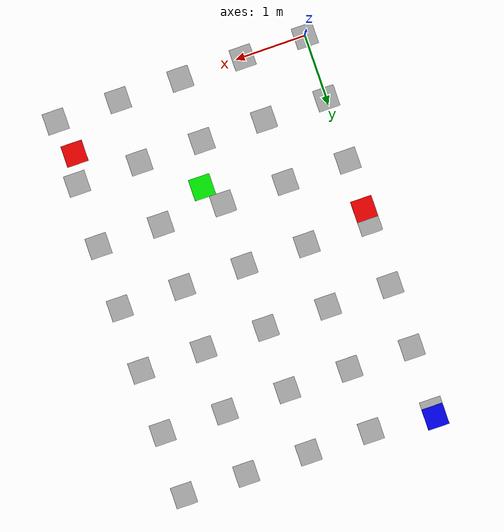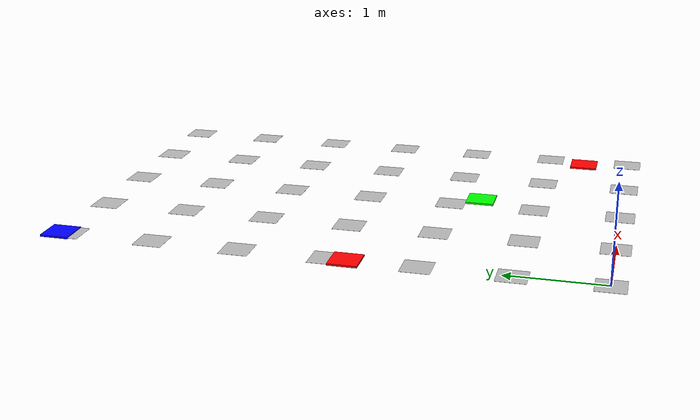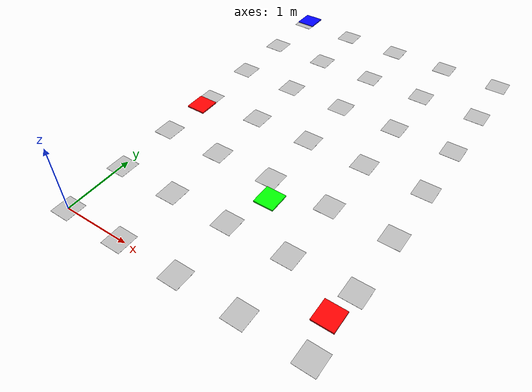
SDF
<sdf version="1.5">
 <world name="default">
  <include><uri>model://aruco_cmit_txt</uri></include>
  <include><uri>model://sun</uri></include>
  <include><name>red_0</name><uri>model://red</uri><pose>0 2.5 0 0 0 0</pose></include>
  <include><name>blue_0</name><uri>model://blue</uri><pose>0 5.5 0 0 0 0</pose></include>
  <include><name>red_1</name><uri>model://red</uri><pose>3.5 0.5 0 0 0 0</pose></include>
  <include><name>green_0</name><uri>model://green</uri><pose>2 1.5 0 0 0 0</pose></include>
  <scene>
   <ambient>0.8 0.8 0.8 1</ambient>
   <background>0.8 0.9 1 1</background>
   <shadows>false</shadows>
   <grid>false</grid>
   <origin_visual>false</origin_visual>
  </scene>
  <physics default="0" name="default_physics" type="ode">
   <gravity>0 0 -9.8066</gravity>
   <ode>
    <solver>
     <type>quick</type>
     <iters>10</iters>
     <sor>1.3</sor>
     <use_dynamic_moi_rescaling>0</use_dynamic_moi_rescaling>
    </solver>
    <constraints>
     <cfm>0</cfm>
     <erp>0.2</erp>
     <contact_max_correcting_vel>100</contact_max_correcting_vel>
     <contact_surface_layer>0.001</contact_surface_layer>
    </constraints>
   </ode>
   <max_step_size>0.004</max_step_size>
   <real_time_factor>1</real_time_factor>
   <real_time_update_rate>250</real_time_update_rate>
   <magnetic_field>6.0e-6 2.3e-5 -4.2e-5</magnetic_field>
  </physics>
 </world>
</sdf>

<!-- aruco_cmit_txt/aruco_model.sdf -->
<sdf version="1.5">
    <model name="aruco_2_99">
        <static>true</static>
        <link name="aruco_2_99_link">

<visual name="visual_marker_1">
    <pose>0.0 0.0 0.0 0.0 0.0 1.57079632679</pose>
    <cast_shadows>false</cast_shadows>
    <geometry>
        <box>
            <size>0.3 0.3 1e-3</size>
        </box>
    </geometry>
    <material>
        <script>
            <uri>model://aruco_cmit_txt/materials/scripts</uri>
            <uri>model://aruco_cmit_txt/materials/textures/</uri>
            <name>aruco/1</name>
        </script>
    </material>
</visual>

<visual name="visual_marker_2">
    <pose>0.9 0.0 0.0 0.0 0.0 1.57079632679</pose>
    <cast_shadows>false</cast_shadows>
    <geometry>
        <box>
            <size>0.3 0.3 1e-3</size>
        </box>
    </geometry>
    <material>
        <script>
            <uri>model://aruco_cmit_txt/materials/scripts</uri>
            <uri>model://aruco_cmit_txt/materials/textures</uri>
            <name>aruco/2</name>
        </script>
    </material>
</visual>

<visual name="visual_marker_3">
    <pose>1.8 0.0 0.0 0.0 0.0 1.57079632679</pose>
    <cast_shadows>false</cast_shadows>
    <geometry>
        <box>
            <size>0.3 0.3 1e-3</size>
        </box>
    </geometry>
    <material>
        <script>
            <uri>model://aruco_cmit_txt/materials/scripts</uri>
            <uri>model://aruco_cmit_txt/materials/textures</uri>
            <name>aruco/3</name>
        </script>
    </material>
</visual>

<visual name="visual_marker_4">
    <pose>2.7 0.0 0.0 0.0 0.0 1.57079632679</pose>
    <cast_shadows>false</cast_shadows>
    <geometry>
        <box>
            <size>0.3 0.3 1e-3</size>
        </box>
    </geometry>
    <material>
        <script>
            <uri>model://aruco_cmit_txt/materials/scripts</uri>
            <uri>model://aruco_cmit_txt/materials/textures</uri>
            <name>aruco/4</name>
        </script>
    </material>
</visual>

<visual name="visual_marker_5">
    <pose>3.6 0.0 0.0 0.0 0.0 1.57079632679</pose>
    <cast_shadows>false</cast_shadows>
    <geometry>
        <box>
            <size>0.3 0.3 1e-3</size>
        </box>
    </geometry>
    <material>
        <script>
            <uri>model://aruco_cmit_txt/materials/scripts</uri>
            <uri>model://aruco_cmit_txt/materials/textures</uri>
            <name>aruco/5</name>
        </script>
    </material>
</visual>

<visual name="visual_marker_6">
    <pose>0.0 0.9 0.0 0.0 0.0 1.57079632679</pose>
    <cast_shadows>false</cast_shadows>
    <geometry>
        <box>
            <size>0.3 0.3 1e-3</size>
        </box>
    </geometry>
    <material>
        <script>
            <uri>model://aruco_cmit_txt/materials/scripts</uri>
            <uri>model://aruco_cmit_txt/materials/textures</uri>
            <name>aruco/6</name>
        </script>
    </material>
</visual>

<visual name="visual_marker_7">
    <pose>0.9 0.9 0.0 0.0 0.0 1.57079632679</pose>
    <cast_shadows>false</cast_shadows>
    <geometry>
        <box>
            <size>0.3 0.3 1e-3</size>
        </box>
    </geometry>
    <material>
        <script>
            <uri>model://aruco_cmit_txt/materials/scripts</uri>
            <uri>model://aruco_cmit_txt/materials/textures</uri>
            <name>aruco/7</name>
        </script>
    </material>
</visual>

<visual name="visual_marker_8">
    <pose>1.8 0.9 0.0 0.0 0.0 1.57079632679</pose>
    <cast_shadows>false</cast_shadows>
    <geometry>
        <box>
            <size>0.3 0.3 1e-3</size>
        </box>
    </geometry>
    <material>
        <script>
            <uri>model://aruco_cmit_txt/materials/scripts</uri>
            <uri>model://aruco_cmit_txt/materials/textures</uri>
            <name>aruco/8</name>
        </script>
    </material>
</visual>

<visual name="visual_marker_9">
    <pose>2.7 0.9 0.0 0.0 0.0 1.57079632679</pose>
    <cast_shadows>false</cast_shadows>
    <geometry>
        <box>
            <size>0.3 0.3 1e-3</size>
        </box>
    </geometry>
    <material>
        <script>
            <uri>model://aruco_cmit_txt/materials/scripts</uri>
            <uri>model://aruco_cmit_txt/materials/textures</uri>
            <name>aruco/9</name>
        </script>
    </material>
</visual>

<visual name="visual_marker_10">
    <pose>3.6 0.9 0.0 0.0 0.0 1.57079632679</pose>
    <cast_shadows>false</cast_shadows>
    <geometry>
        <box>
            <size>0.3 0.3 1e-3</size>
        </box>
    </geometry>
    <material>
        <script>
            <uri>model://aruco_cmit_txt/materials/scripts</uri>
            <uri>model://aruco_cmit_txt/materials/textures</uri>
            <name>aruco/10</name>
        </script>
    </material>
</visual>

<visual name="visual_marker_11">
    <pose>0.0 1.8 0.0 0.0 0.0 1.57079632679</pose>
    <cast_shadows>false</cast_shadows>
    <geometry>
        <box>
            <size>0.3 0.3 1e-3</size>
        </box>
    </geometry>
    <material>
        <script>
            <uri>model://aruco_cmit_txt/materials/scripts</uri>
            <uri>model://aruco_cmit_txt/materials/textures</uri>
            <name>aruco/11</name>
        </script>
    </material>
</visual>

<visual name="visual_marker_12">
    <pose>0.9 1.8 0.0 0.0 0.0 1.57079632679</pose>
    <cast_shadows>false</cast_shadows>
    <geometry>
        <box>
            <size>0.3 0.3 1e-3</size>
        </box>
    </geometry>
    <material>
        <script>
            <uri>model://aruco_cmit_txt/materials/scripts</uri>
            <uri>model://aruco_cmit_txt/materials/textures</uri>
            <name>aruco/12</name>
        </script>
    </material>
</visual>

<visual name="visual_marker_13">
    <pose>1.8 1.8 0.0 0.0 0.0 1.57079632679</pose>
    <cast_shadows>false</cast_shadows>
    <geometry>
        <box>
            <size>0.3 0.3 1e-3</size>
        </box>
    </geometry>
    <material>
        <script>
            <uri>model://aruco_cmit_txt/materials/scripts</uri>
            <uri>model://aruco_cmit_txt/materials/textures</uri>
            <name>aruco/13</name>
        </script>
    </material>
</visual>

<visual name="visual_marker_14">
    <pose>2.7 1.8 0.0 0.0 0.0 1.57079632679</pose>
    <cast_shadows>false</cast_shadows>
    <geometry>
        <box>
            <size>0.3 0.3 1e-3</size>
        </box>
    </geometry>
    <material>
        <script>
            <uri>model://aruco_cmit_txt/materials/scripts</uri>
            <uri>model://aruco_cmit_txt/materials/textures</uri>
            <name>aruco/14</name>
        </script>
    </material>
</visual>

<visual name="visual_marker_15">
    <pose>3.6 1.8 0.0 0.0 0.0 1.57079632679</pose>
    <cast_shadows>false</cast_shadows>
    <geometry>
        <box>
            <size>0.3 0.3 1e-3</size>
        </box>
    </geometry>
    <material>
        <script>
            <uri>model://aruco_cmit_txt/materials/scripts</uri>
            <uri>model://aruco_cmit_txt/materials/textures</uri>
            <name>aruco/15</name>
        </script>
    </material>
</visual>

<visual name="visual_marker_16">
    <pose>0.0 2.7 0.0 0.0 0.0 1.57079632679</pose>
    <cast_shadows>false</cast_shadows>
    <geometry>
        <box>
            <size>0.3 0.3 1e-3</size>
        </box>
    </geometry>
    <material>
        <script>
            <uri>model://aruco_cmit_txt/materials/scripts</uri>
            <uri>model://aruco_cmit_txt/materials/textures</uri>
            <name>aruco/16</name>
        </script>
    </material>
</visual>

<visual name="visual_marker_17">
    <pose>0.9 2.7 0.0 0.0 0.0 1.57079632679</pose>
    <cast_shadows>false</cast_shadows>
    <geometry>
        <box>
            <size>0.3 0.3 1e-3</size>
        </box>
    </geometry>
    <material>
        <script>
            <uri>model://aruco_cmit_txt/materials/scripts</uri>
            <uri>model://aruco_cmit_txt/materials/textures</uri>
            <name>aruco/17</name>
        </script>
    </material>
</visual>

<visual name="visual_marker_18">
    <pose>1.8 2.7 0.0 0.0 0.0 1.57079632679</pose>
    <cast_shadows>false</cast_shadows>
    <geometry>
        <box>
            <size>0.3 0.3 1e-3</size>
        </box>
    </geometry>
    <material>
        <script>
            <uri>model://aruco_cmit_txt/materials/scripts</uri>
            <uri>model://aruco_cmit_txt/materials/textures</uri>
            <name>aruco/18</name>
        </script>
    </material>
</visual>

<visual name="visual_marker_19">
    <pose>2.7 2.7 0.0 0.0 0.0 1.57079632679</pose>
    <cast_shadows>false</cast_shadows>
    <geometry>
        <box>
            <size>0.3 0.3 1e-3</size>
        </box>
    </geometry>
    <material>
        <script>
            <uri>model://aruco_cmit_txt/materials/scripts</uri>
            <uri>model://aruco_cmit_txt/materials/textures</uri>
            <name>aruco/19</name>
        </script>
    </material>
</visual>

<visual name="visual_marker_20">
    <pose>3.6 2.7 0.0 0.0 0.0 1.57079632679</pose>
    <cast_shadows>false</cast_shadows>
    <geometry>
        <box>
            <size>0.3 0.3 1e-3</size>
        </box>
    </geometry>
    <material>
        <script>
            <uri>model://aruco_cmit_txt/materials/scripts</uri>
            <uri>model://aruco_cmit_txt/materials/textures</uri>
            <name>aruco/20</name>
        </script>
    </material>
</visual>

<visual name="visual_marker_21">
    <pose>0.0 3.6 0.0 0.0 0.0 1.57079632679</pose>
    <cast_shadows>false</cast_shadows>
    <geometry>
        <box>
            <size>0.3 0.3 1e-3</size>
        </box>
    </geometry>
    <material>
        <script>
            <uri>model://aruco_cmit_txt/materials/scripts</uri>
            <uri>model://aruco_cmit_txt/materials/textures/</uri>
            <name>aruco/21</name>
        </script>
    </material>
</visual>

<visual name="visual_marker_22">
    <pose>0.9 3.6 0.0 0.0 0.0 1.57079632679</pose>
    <cast_shadows>false</cast_shadows>
    <geometry>
        <box>
            <size>0.3 0.3 1e-3</size>
        </box>
    </geometry>
    <material>
        <script>
            <uri>model://aruco_cmit_txt/materials/scripts</uri>
            <uri>model://aruco_cmit_txt/materials/textures</uri>
            <name>aruco/22</name>
        </script>
    </material>
</visual>

<visual name="visual_marker_23">
    <pose>1.8 3.6 0.0 0.0 0.0 1.57079632679</pose>
    <cast_shadows>false</cast_shadows>
    <geometry>
        <box>
            <size>0.3 0.3 1e-3</size>
        </box>
    </geometry>
    <material>
        <script>
            <uri>model://aruco_cmit_txt/materials/scripts</uri>
            <uri>model://aruco_cmit_txt/materials/textures</uri>
            <name>aruco/23</name>
        </script>
    </material>
</visual>

<visual name="visual_marker_24">
    <pose>2.7 3.6 0.0 0.0 0.0 1.57079632679</pose>
    <cast_shadows>false</cast_shadows>
    <geometry>
        <box>
            <size>0.3 0.3 1e-3</size>
        </box>
    </geometry>
    <material>
        <script>
            <uri>model://aruco_cmit_txt/materials/scripts</uri>
            <uri>model://aruco_cmit_txt/materials/textures</uri>
            <name>aruco/24</name>
        </script>
    </material>
</visual>

<visual name="visual_marker_25">
    <pose>3.6 3.6 0.0 0.0 0.0 1.57079632679</pose>
    <cast_shadows>false</cast_shadows>
    <geometry>
        <box>
            <size>0.3 0.3 1e-3</size>
        </box>
    </geometry>
    <material>
        <script>
            <uri>model://aruco_cmit_txt/materials/scripts</uri>
            <uri>model://aruco_cmit_txt/materials/textures</uri>
            <name>aruco/25</name>
        </script>
    </material>
</visual>

<visual name="visual_marker_26">
    <pose>0.0 4.5 0.0 0.0 0.0 1.57079632679</pose>
    <cast_shadows>false</cast_shadows>
    <geometry>
        <box>
            <size>0.3 0.3 1e-3</size>
        </box>
    </geometry>
    <material>
        <script>
            <uri>model://aruco_cmit_txt/materials/scripts</uri>
            <uri>model://aruco_cmit_txt/materials/textures/</uri>
            <name>aruco/26</name>
        </script>
    </material>
</visual>

<visual name="visual_marker_27">
    <pose>0.9 4.5 0.0 0.0 0.0 1.57079632679</pose>
    <cast_shadows>false</cast_shadows>
    <geometry>
        <box>
            <size>0.3 0.3 1e-3</size>
        </box>
    </geometry>
    <material>
        <script>
            <uri>model://aruco_cmit_txt/materials/scripts</uri>
            <uri>model://aruco_cmit_txt/materials/textures</uri>
            <name>aruco/27</name>
        </script>
    </material>
</visual>

<visual name="visual_marker_28">
    <pose>1.8 4.5 0.0 0.0 0.0 1.57079632679</pose>
    <cast_shadows>false</cast_shadows>
    <geometry>
        <box>
            <size>0.3 0.3 1e-3</size>
        </box>
    </geometry>
    <material>
        <script>
            <uri>model://aruco_cmit_txt/materials/scripts</uri>
            <uri>model://aruco_cmit_txt/materials/textures</uri>
            <name>aruco/28</name>
        </script>
    </material>
</visual>

<visual name="visual_marker_29">
    <pose>2.7 4.5 0.0 0.0 0.0 1.57079632679</pose>
    <cast_shadows>false</cast_shadows>
    <geometry>
        <box>
            <size>0.3 0.3 1e-3</size>
        </box>
    </geometry>
    <material>
        <script>
            <uri>model://aruco_cmit_txt/materials/scripts</uri>
            <uri>model://aruco_cmit_txt/materials/textures</uri>
            <name>aruco/29</name>
        </script>
    </material>
</visual>

<visual name="visual_marker_30">
    <pose>3.6 4.5 0.0 0.0 0.0 1.57079632679</pose>
    <cast_shadows>false</cast_shadows>
    <geometry>
        <box>
            <size>0.3 0.3 1e-3</size>
        </box>
    </geometry>
    <material>
        <script>
            <uri>model://aruco_cmit_txt/materials/scripts</uri>
            <uri>model://aruco_cmit_txt/materials/textures</uri>
            <name>aruco/30</name>
        </script>
    </material>
</visual>

<visual name="visual_marker_31">
    <pose>0.0 5.4 0.0 0.0 0.0 1.57079632679</pose>
    <cast_shadows>false</cast_shadows>
    <geometry>
        <box>
            <size>0.3 0.3 1e-3</size>
        </box>
    </geometry>
    <material>
        <script>
            <uri>model://aruco_cmit_txt/materials/scripts</uri>
            <uri>model://aruco_cmit_txt/materials/textures/</uri>
            <name>aruco/31</name>
        </script>
    </material>
</visual>

<visual name="visual_marker_32">
    <pose>0.9 5.4 0.0 0.0 0.0 1.57079632679</pose>
    <cast_shadows>false</cast_shadows>
    <geometry>
        <box>
            <size>0.3 0.3 1e-3</size>
        </box>
    </geometry>
    <material>
        <script>
            <uri>model://aruco_cmit_txt/materials/scripts</uri>
            <uri>model://aruco_cmit_txt/materials/textures</uri>
            <name>aruco/32</name>
        </script>
    </material>
</visual>

<visual name="visual_marker_33">
    <pose>1.8 5.4 0.0 0.0 0.0 1.57079632679</pose>
    <cast_shadows>false</cast_shadows>
    <geometry>
        <box>
            <size>0.3 0.3 1e-3</size>
        </box>
    </geometry>
    <material>
        <script>
            <uri>model://aruco_cmit_txt/materials/scripts</uri>
            <uri>model://aruco_cmit_txt/materials/textures</uri>
            <name>aruco/33</name>
        </script>
    </material>
</visual>

<visual name="visual_marker_34">
    <pose>2.7 5.4 0.0 0.0 0.0 1.57079632679</pose>
    <cast_shadows>false</cast_shadows>
    <geometry>
        <box>
            <size>0.3 0.3 1e-3</size>
        </box>
    </geometry>
    <material>
        <script>
            <uri>model://aruco_cmit_txt/materials/scripts</uri>
            <uri>model://aruco_cmit_txt/materials/textures</uri>
            <name>aruco/34</name>
        </script>
    </material>
</visual>

<visual name="visual_marker_35">
    <pose>3.6 5.4 0.0 0.0 0.0 1.57079632679</pose>
    <cast_shadows>false</cast_shadows>
    <geometry>
        <box>
            <size>0.3 0.3 1e-3</size>
        </box>
    </geometry>
    <material>
        <script>
            <uri>model://aruco_cmit_txt/materials/scripts</uri>
            <uri>model://aruco_cmit_txt/materials/textures</uri>
            <name>aruco/35</name>
        </script>
    </material>
</visual>

        </link>
    </model>
</sdf>

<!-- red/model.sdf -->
<sdf version='1.6'>
  <model name='red'>
    <link name='link'>
      <inertial>
        <mass>1</mass>
        <inertia>
          <ixx>0.166667</ixx>
          <ixy>0</ixy>
          <ixz>0</ixz>
          <iyy>0.166667</iyy>
          <iyz>0</iyz>
          <izz>0.166667</izz>
        </inertia>
        <pose frame=''>0 0 0 0 -0 0</pose>
      </inertial>
      <self_collide>0</self_collide>
      <enable_wind>0</enable_wind>
      <kinematic>0</kinematic>
      <pose frame=''>0 0 0 0 -0 0</pose>
      <gravity>1</gravity>
      <visual name='visual'>
        <geometry>
          <box>
            <size>0.3 0.3 0.02</size>
          </box>
        </geometry>
        <material>
          <script>
            <name>Gazebo/Grey</name>
            <uri>file://media/materials/scripts/gazebo.material</uri>
          </script>
          <shader type='pixel'>
            <normal_map>__default__</normal_map>
          </shader>
          <ambient>1 0 0 1</ambient>
          <diffuse>1 0 0 1</diffuse>
          <specular>0.01 0.01 0.01 1</specular>
          <emissive>0 0 0 1</emissive>
        </material>
        <pose frame=''>0 0 0 0 -0 0</pose>
        <transparency>0</transparency>
        <cast_shadows>1</cast_shadows>
      </visual>
      <collision name='collision'>
        <laser_retro>0</laser_retro>
        <max_contacts>10</max_contacts>
        <pose frame=''>0 0 0 0 -0 0</pose>
        <geometry>
          <box>
            <size>0.3 0.3 0.02</size>
          </box>
        </geometry>
        <surface>
          <friction>
            <ode>
              <mu>1</mu>
              <mu2>1</mu2>
              <fdir1>0 0 0</fdir1>
              <slip1>0</slip1>
              <slip2>0</slip2>
            </ode>
            <torsional>
              <coefficient>1</coefficient>
              <patch_radius>0</patch_radius>
              <surface_radius>0</surface_radius>
              <use_patch_radius>1</use_patch_radius>
              <ode>
                <slip>0</slip>
              </ode>
            </torsional>
          </friction>
          <bounce>
            <restitution_coefficient>0</restitution_coefficient>
            <threshold>1e+06</threshold>
          </bounce>
          <contact>
            <collide_without_contact>0</collide_without_contact>
            <collide_without_contact_bitmask>1</collide_without_contact_bitmask>
            <collide_bitmask>1</collide_bitmask>
            <ode>
              <soft_cfm>0</soft_cfm>
              <soft_erp>0.2</soft_erp>
              <kp>1e+13</kp>
              <kd>1</kd>
              <max_vel>0.01</max_vel>
              <min_depth>0</min_depth>
            </ode>
            <bullet>
              <split_impulse>1</split_impulse>
              <split_impulse_penetration_threshold>-0.01</split_impulse_penetration_threshold>
              <soft_cfm>0</soft_cfm>
              <soft_erp>0.2</soft_erp>
              <kp>1e+13</kp>
              <kd>1</kd>
            </bullet>
          </contact>
        </surface>
      </collision>
    </link>
    <static>1</static>
    <allow_auto_disable>1</allow_auto_disable>
  </model>
</sdf>

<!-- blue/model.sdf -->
<sdf version='1.6'>
  <model name='blue'>
    <link name='link'>
      <inertial>
        <mass>1</mass>
        <inertia>
          <ixx>0.166667</ixx>
          <ixy>0</ixy>
          <ixz>0</ixz>
          <iyy>0.166667</iyy>
          <iyz>0</iyz>
          <izz>0.166667</izz>
        </inertia>
        <pose frame=''>0 0 0 0 -0 0</pose>
      </inertial>
      <self_collide>0</self_collide>
      <enable_wind>0</enable_wind>
      <kinematic>0</kinematic>
      <pose frame=''>0 0 0 0 -0 0</pose>
      <gravity>1</gravity>
      <visual name='visual'>
        <geometry>
          <box>
            <size>0.3 0.3 0.02</size>
          </box>
        </geometry>
        <material>
          <script>
            <name>Gazebo/Grey</name>
            <uri>file://media/materials/scripts/gazebo.material</uri>
          </script>
          <shader type='pixel'>
            <normal_map>__default__</normal_map>
          </shader>
          <ambient>0 0 1 1</ambient>
          <diffuse>0 0 1 1</diffuse>
          <specular>0.01 0.01 0.01 1</specular>
          <emissive>0 0 0 1</emissive>
        </material>
        <pose frame=''>0 0 0 0 -0 0</pose>
        <transparency>0</transparency>
        <cast_shadows>1</cast_shadows>
      </visual>
      <collision name='collision'>
        <laser_retro>0</laser_retro>
        <max_contacts>10</max_contacts>
        <pose frame=''>0 0 0 0 -0 0</pose>
        <geometry>
          <box>
            <size>0.3 0.3 0.02</size>
          </box>
        </geometry>
        <surface>
          <friction>
            <ode>
              <mu>1</mu>
              <mu2>1</mu2>
              <fdir1>0 0 0</fdir1>
              <slip1>0</slip1>
              <slip2>0</slip2>
            </ode>
            <torsional>
              <coefficient>1</coefficient>
              <patch_radius>0</patch_radius>
              <surface_radius>0</surface_radius>
              <use_patch_radius>1</use_patch_radius>
              <ode>
                <slip>0</slip>
              </ode>
            </torsional>
          </friction>
          <bounce>
            <restitution_coefficient>0</restitution_coefficient>
            <threshold>1e+06</threshold>
          </bounce>
          <contact>
            <collide_without_contact>0</collide_without_contact>
            <collide_without_contact_bitmask>1</collide_without_contact_bitmask>
            <collide_bitmask>1</collide_bitmask>
            <ode>
              <soft_cfm>0</soft_cfm>
              <soft_erp>0.2</soft_erp>
              <kp>1e+13</kp>
              <kd>1</kd>
              <max_vel>0.01</max_vel>
              <min_depth>0</min_depth>
            </ode>
            <bullet>
              <split_impulse>1</split_impulse>
              <split_impulse_penetration_threshold>-0.01</split_impulse_penetration_threshold>
              <soft_cfm>0</soft_cfm>
              <soft_erp>0.2</soft_erp>
              <kp>1e+13</kp>
              <kd>1</kd>
            </bullet>
          </contact>
        </surface>
      </collision>
    </link>
    <static>1</static>
    <allow_auto_disable>1</allow_auto_disable>
  </model>
</sdf>

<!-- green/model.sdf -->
<sdf version='1.6'>
  <model name='green'>
    <link name='link'>
      <inertial>
        <mass>1</mass>
        <inertia>
          <ixx>0.166667</ixx>
          <ixy>0</ixy>
          <ixz>0</ixz>
          <iyy>0.166667</iyy>
          <iyz>0</iyz>
          <izz>0.166667</izz>
        </inertia>
        <pose frame=''>0 0 0 0 -0 0</pose>
      </inertial>
      <self_collide>0</self_collide>
      <enable_wind>0</enable_wind>
      <kinematic>0</kinematic>
      <pose frame=''>0 0 0 0 -0 0</pose>
      <gravity>1</gravity>
      <visual name='visual'>
        <geometry>
          <box>
            <size>0.3 0.3 0.02</size>
          </box>
        </geometry>
        <material>
          <script>
            <name>Gazebo/Grey</name>
            <uri>file://media/materials/scripts/gazebo.material</uri>
          </script>
          <shader type='pixel'>
            <normal_map>__default__</normal_map>
          </shader>
          <ambient>0 1 0 1</ambient>
          <diffuse>0 1 0 1</diffuse>
          <specular>0.01 0.01 0.01 1</specular>
          <emissive>0 0 0 1</emissive>
        </material>
        <pose frame=''>0 0 0 0 -0 0</pose>
        <transparency>0</transparency>
        <cast_shadows>1</cast_shadows>
      </visual>
      <collision name='collision'>
        <laser_retro>0</laser_retro>
        <max_contacts>10</max_contacts>
        <pose frame=''>0 0 0 0 -0 0</pose>
        <geometry>
          <box>
            <size>0.3 0.3 0.02</size>
          </box>
        </geometry>
        <surface>
          <friction>
            <ode>
              <mu>1</mu>
              <mu2>1</mu2>
              <fdir1>0 0 0</fdir1>
              <slip1>0</slip1>
              <slip2>0</slip2>
            </ode>
            <torsional>
              <coefficient>1</coefficient>
              <patch_radius>0</patch_radius>
              <surface_radius>0</surface_radius>
              <use_patch_radius>1</use_patch_radius>
              <ode>
                <slip>0</slip>
              </ode>
            </torsional>
          </friction>
          <bounce>
            <restitution_coefficient>0</restitution_coefficient>
            <threshold>1e+06</threshold>
          </bounce>
          <contact>
            <collide_without_contact>0</collide_without_contact>
            <collide_without_contact_bitmask>1</collide_without_contact_bitmask>
            <collide_bitmask>1</collide_bitmask>
            <ode>
              <soft_cfm>0</soft_cfm>
              <soft_erp>0.2</soft_erp>
              <kp>1e+13</kp>
              <kd>1</kd>
              <max_vel>0.01</max_vel>
              <min_depth>0</min_depth>
            </ode>
            <bullet>
              <split_impulse>1</split_impulse>
              <split_impulse_penetration_threshold>-0.01</split_impulse_penetration_threshold>
              <soft_cfm>0</soft_cfm>
              <soft_erp>0.2</soft_erp>
              <kp>1e+13</kp>
              <kd>1</kd>
            </bullet>
          </contact>
        </surface>
      </collision>
    </link>
    <static>1</static>
    <allow_auto_disable>1</allow_auto_disable>
  </model>
</sdf>
